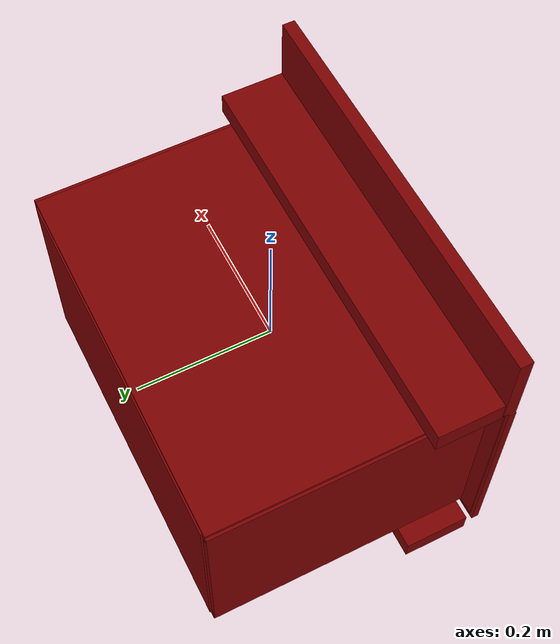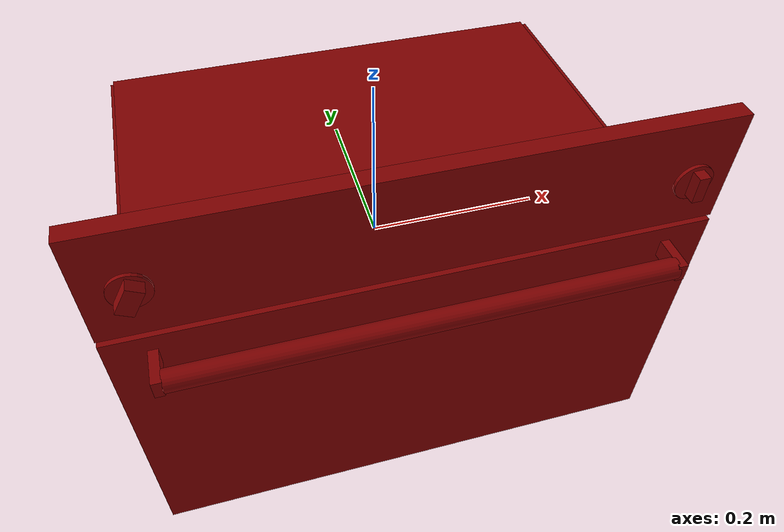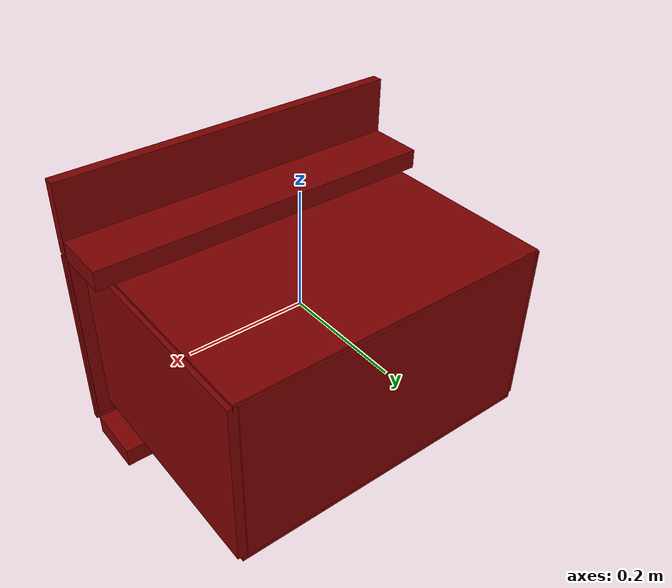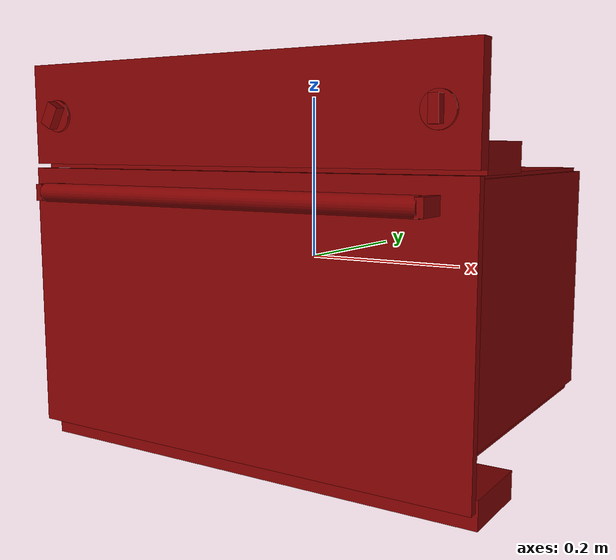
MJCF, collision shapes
<mujoco model="model">
  <compiler angle="radian"/>
  <asset>
    <mesh file="visuals/Body001.obj" name="Body001_vis"/>
    <mesh file="visuals/Container001.obj" name="Container001_vis"/>
    <mesh file="visuals/Door001.obj" name="Door001_vis"/>
    <mesh file="visuals/Door001_Clear.obj" name="Door001_Clear_vis"/>
    <mesh file="visuals/Knob001.obj" name="Knob001_vis"/>
    <mesh file="visuals/Knob002.obj" name="Knob002_vis"/>
    <mesh file="visuals/Shelf001.obj" name="Shelf001_vis"/>
    <texture file="visuals/T_BC001.png" name="Body001_material" type="2d"/>
    <material name="Body001_material" rgba="1 1 1 1.0" texture="Body001_material" shininess="0.5" specular="0.3103448502657381"/>
    <texture file="visuals/T_BC001.png" name="Container001_material" type="2d"/>
    <material name="Container001_material" rgba="1 1 1 1.0" texture="Container001_material" shininess="0.5" specular="0.3103448502657381"/>
    <texture file="visuals/T_BC001.png" name="Door001_material" type="2d"/>
    <material name="Door001_material" rgba="1 1 1 1.0" texture="Door001_material" shininess="0.5" specular="0.3103448502657381"/>
    <texture file="visuals/T_BC001.png" name="Door001_Clear_material" type="2d"/>
    <material name="Door001_Clear_material" rgba="1 1 1 0.9045518040657043" texture="Door001_Clear_material" shininess="0.5" specular="0.3103448502657381"/>
    <texture file="visuals/T_BC001.png" name="Knob001_material" type="2d"/>
    <material name="Knob001_material" rgba="1 1 1 1.0" texture="Knob001_material" shininess="0.5" specular="0.3103448502657381"/>
    <texture file="visuals/T_BC001.png" name="Knob002_material" type="2d"/>
    <material name="Knob002_material" rgba="1 1 1 1.0" texture="Knob002_material" shininess="0.5" specular="0.3103448502657381"/>
    <texture file="visuals/T_BC001.png" name="Shelf001_material" type="2d"/>
    <material name="Shelf001_material" rgba="1 1 1 1.0" texture="Shelf001_material" shininess="0.5" specular="0.3103448502657381"/>
  </asset>
  <default>
    <default class="visual">
      <geom conaffinity="0" contype="0" group="1" type="mesh"/>
    </default>
    <default class="collision">
      <geom group="0" rgba="0.5 0 0 0.5"/>
    </default>
    <default class="spawn">
      <geom group="0" rgba="1 1 1 0.5" contype="0" conaffinity="0"/>
      <site group="0" rgba="1 1 1 0.5"/>
    </default>
    <default class="region">
      <geom group="1" conaffinity="0" contype="0" rgba="0 1 0 0"/>
    </default>
  </default>
  <worldbody>
    <body>
      <body name="object">
        <geom mesh="Body001_vis" type="mesh" solimp="0.998 0.998 0.001" solref="0.001 1" density="100" friction="0.95 0.3 0.1" class="visual" material="Body001_material"/>
        <geom class="collision" type="box" pos="0.0001385873183608055 -0.11962300539016724 0.12895439565181732" size="0.29593801498413086 0.04697509482502937 0.01630604825913906" quat="1.0 0.0 0.0 0.0"/>
        <geom class="collision" type="box" pos="0.00013840850442647934 -0.1185215562582016 -0.2231420874595642" size="0.29593801498413086 0.048465847969055176 0.016418814659118652" quat="1.0 0.0 0.0 0.0"/>
        <geom class="collision" type="box" pos="0.0005897199735045433 -0.09609633684158325 -0.19395418465137482" size="0.19131983816623688 0.023435600101947784 0.016083434224128723" quat="1.0 0.0 0.0 0.0"/>
        <geom class="collision" type="box" pos="-0.0024960804730653763 0.21943849325180054 -0.03495519608259201" size="0.26218441128730774 0.006360001862049103 0.14234308898448944" quat="1.0 0.0 0.0 0.0"/>
        <geom class="collision" type="box" pos="0.2646077275276184 0.028545022010803223 -0.03495519235730171" size="0.00988078024238348 0.1946200728416443 0.14234308898448944" quat="1.0 0.0 0.0 0.0"/>
        <geom class="collision" type="box" pos="-0.2654913663864136 0.028545022010803223 -0.03495519235730171" size="0.00988078024238348 0.1946200728416443 0.14234308898448944" quat="1.0 0.0 0.0 0.0"/>
        <geom class="collision" type="box" pos="-0.00233306922018528 0.028545022010803223 0.10197731107473373" size="0.26893773674964905 0.19462010264396667 0.009880789555609226" quat="1.0 0.0 0.0 0.0"/>
        <geom class="collision" type="box" pos="-0.00233306922018528 0.028545022010803223 -0.1783587485551834" size="0.26893773674964905 0.19462010264396667 0.009880789555609226" quat="1.0 0.0 0.0 0.0"/>
        <geom class="collision" type="box" pos="-9.37068834900856e-05 -0.17641803622245789 0.1788349151611328" size="0.2969999313354492 0.009311199188232422 0.06072571501135826" quat="1.0 0.0 0.0 0.0"/>
        <geom class="collision" type="box" pos="0.24913519620895386 0.019618427380919456 -0.09356553852558136" size="0.011084035038948059 0.14835990965366364 0.004147306550294161" quat="1.0 0.0 0.0 0.0"/>
        <geom class="collision" type="box" pos="-0.24648930132389069 0.019618427380919456 -0.02157069556415081" size="0.013070963323116302 0.14835990965366364 0.003063070122152567" quat="1.0 0.0 0.0 0.0"/>
        <geom class="collision" type="box" pos="-0.24866795539855957 0.019618427380919456 -0.09356553852558136" size="0.010892309248447418 0.14835990965366364 0.004147306550294161" quat="1.0 0.0 0.0 0.0"/>
        <geom class="collision" type="box" pos="0.2471482753753662 0.019618427380919456 -0.02157069556415081" size="0.013070963323116302 0.14835990965366364 0.003063070122152567" quat="1.0 0.0 0.0 0.0"/>
        <body name="Container001">
          <joint axis="0.0 -1.0 0.0" pos="-9.388010948896408e-05 0.009812705218791962 -0.013497047126293182" limited="true" name="Container001_joint" range="0.0 0.25" type="slide" damping="1" frictionloss="1" armature=".01" stiffness="0.05"/>
          <geom mesh="Container001_vis" type="mesh" solimp="0.998 0.998 0.001" solref="0.001 1" density="100" friction="0.95 0.3 0.1" class="visual" material="Container001_material"/>
          <geom class="collision" type="box" pos="-0.00011194217950105667 0.020306125283241272 -0.0956801027059555" size="0.23718252778053284 0.14945583045482635 0.006238078232854605" quat="1.0 0.0 0.0 0.0"/>
        </body>
        <body name="Door001">
          <joint axis="1.0 0.0 0.0" pos="-0.011750079691410065 -0.18619313836097717 -0.2175385057926178" limited="true" name="Door001_joint" range="0.0 1.15" type="hinge" damping="5" frictionloss="1" armature=".01" stiffness="0.05"/>
          <geom mesh="Door001_vis" type="mesh" solimp="0.998 0.998 0.001" solref="0.001 1" density="100" friction="0.95 0.3 0.1" class="visual" material="Door001_material"/>
          <geom class="collision" type="box" pos="-6.51925802230835e-09 -0.18176592886447906 -0.051945559680461884" size="0.29709380865097046 0.00531902676448226 0.16467206180095673" quat="1.0 0.0 0.0 0.0"/>
          <geom class="collision" type="cylinder" pos="0.0005732558201998472 -0.2154431790113449 0.08429500460624695" size="0.011177510023117065 0.24997226893901825" quat="0.7071068286895752 1.2101618374060763e-08 0.7071067690849304 -1.2101617485882343e-08"/>
          <geom class="collision" type="box" pos="0.25304916501045227 -0.20494045317173004 0.08437934517860413" size="0.004834496416151524 0.019185734912753105 0.009914780035614967" quat="1.0 0.0 0.0 0.0"/>
          <geom class="collision" type="box" pos="-0.2537396550178528 -0.20494045317173004 0.08437934517860413" size="0.004834496416151524 0.019185734912753105 0.009914780035614967" quat="1.0 0.0 0.0 0.0"/>
          <body name="Door001_Clear">
            <geom mesh="Door001_Clear_vis" type="mesh" solimp="0.998 0.998 0.001" solref="0.001 1" density="100" friction="0.95 0.3 0.1" class="visual" material="Door001_Clear_material"/>
            <geom class="collision" type="box" pos="0.0005355076864361763 -0.17672757804393768 -0.05019999295473099" size="0.29228195548057556 0.0020608052145689726 0.15669754147529602" quat="1.0 0.0 0.0 0.0"/>
          </body>
        </body>
        <body name="Knob001">
          <joint axis="0.0 1.0 0.0" pos="-0.25442516803741455 -0.1934025138616562 0.17655177414417267" limited="true" name="Knob001_joint" range="0.0 5.061454830783556" type="hinge" damping="0.05" armature="0.001"/>
          <geom mesh="Knob001_vis" type="mesh" solimp="0.998 0.998 0.001" solref="0.001 1" density="100" friction="0.95 0.3 0.1" class="visual" material="Knob001_material"/>
          <geom class="collision" type="cylinder" pos="-0.25438302755355835 -0.1891133040189743 0.1765359789133072" size="0.019280582666397095 0.0017996126553043723" quat="0.7071067094802856 0.7071068286895752 0.0 0.0"/>
          <geom class="collision" type="box" pos="-0.25470221042633057 -0.19750595092773438 0.177241712808609" size="0.008250432088971138 0.006144003476947546 0.014450949616730213" quat="0.9671083092689514 -1.6025834825850183e-10 0.2543649971485138 -5.980698714047605e-10"/>
        </body>
        <body name="Knob002">
          <joint axis="0.0 -1.0 0.0" pos="0.2560276389122009 -0.1934024542570114 0.17407190799713135" limited="true" name="Knob002_joint" range="-0.9599310885968813 3.141592653589793" type="hinge" damping="0.05" armature="0.001"/>
          <geom mesh="Knob002_vis" type="mesh" solimp="0.998 0.998 0.001" solref="0.001 1" density="100" friction="0.95 0.3 0.1" class="visual" material="Knob002_material"/>
          <geom class="collision" type="cylinder" pos="0.2558738589286804 -0.18985889852046967 0.1742713451385498" size="0.019232727587223053 0.0017872124444693327" quat="0.7071067094802856 0.7071068286895752 0.0 0.0"/>
          <geom class="collision" type="box" pos="0.2560108006000519 -0.19749823212623596 0.1747647374868393" size="0.005599156953394413 0.00600207457318902 0.01411654893308878" quat="0.9999803304672241 -1.0024512110977293e-15 -0.006273732520639896 -8.429357212236255e-10"/>
        </body>
        <body name="Shelf001">
          <joint axis="0.0 -1.0 0.0" pos="-9.388010948896408e-05 0.009812705218791962 -0.013497047126293182" limited="true" name="Shelf001_joint" range="0.0 0.25" type="slide" damping="1" frictionloss="1" armature=".01" stiffness="0.05"/>
          <geom mesh="Shelf001_vis" type="mesh" solimp="0.998 0.998 0.001" solref="0.001 1" density="100" friction="0.95 0.3 0.1" class="visual" material="Shelf001_material"/>
          <geom class="collision" type="box" pos="-0.00011194217950105667 0.008494682610034943 -0.014804147183895111" size="0.2433086782693863 0.12272078543901443 0.002559476066380739" quat="1.0 0.0 0.0 0.0"/>
        </body>
        <geom class="region" name="reg_main" type="box" pos="0.0 0.01933610439300537 -1.1175870895385742e-08" size="0.29709380865097046 0.20646244287490845 0.23956091701984406"/>
        <geom class="region" name="reg_int" type="box" pos="0.001600317656993866 0.020201310515403748 -0.03730297088623047" size="0.2501147463917732 0.1809871643781662 0.1310001015663147"/>
      </body>
    </body>
  </worldbody>
  <actuator>
    <motor name="Container001_joint_actuator" joint="Container001_joint" gear="10"/>
    <motor name="Door001_joint_actuator" joint="Door001_joint" gear="20"/>
    <motor name="Knob001_joint_actuator" joint="Knob001_joint" gear="50"/>
    <motor name="Knob002_joint_actuator" joint="Knob002_joint" gear="50"/>
    <motor name="Shelf001_joint_actuator" joint="Shelf001_joint" gear="50"/>
  </actuator>
</mujoco>
